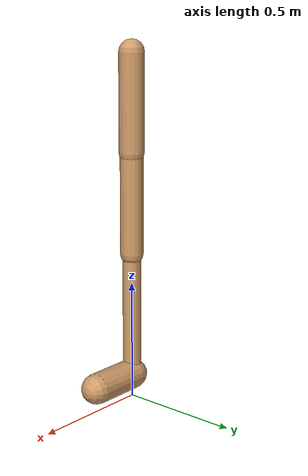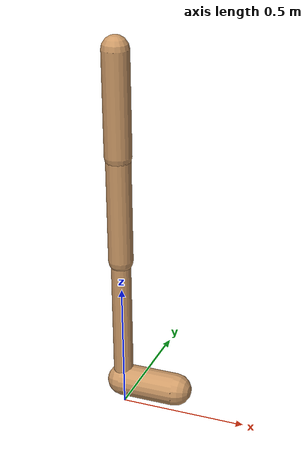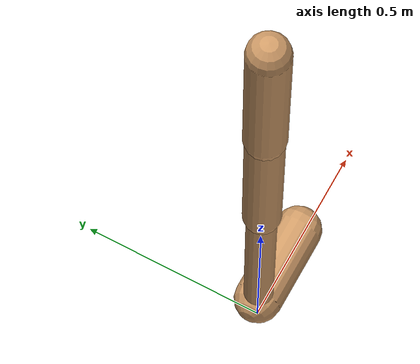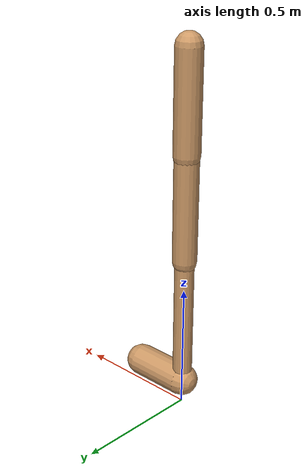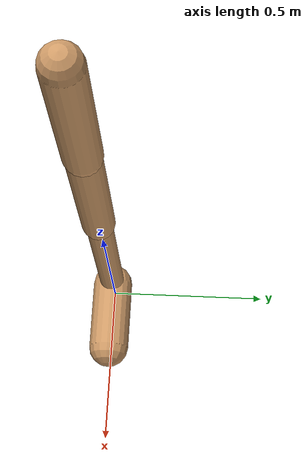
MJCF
<mujoco model="walker2d">
  <compiler angle="degree" coordinate="global" inertiafromgeom="true" />
  <default>
    <joint armature="0.01" damping=".1" limited="true" />
    <geom conaffinity="0" condim="3" contype="1" density="1000" friction="0.8 .1 .1" rgba="0.8 0.6 .4 1" />
  </default>
  <option integrator="RK4" timestep="0.002" />
  <worldbody>

    <body name="torso" pos="0 0 -0.061342814433868506">
      <joint armature="0" axis="1 0 0" damping="0" limited="false" name="ignorex" pos="0 0 0" stiffness="0" type="slide" />
      <joint armature="0" axis="0 0 1" damping="0" limited="false" name="ignorez" pos="0 0 0" ref="1.25" stiffness="0" type="slide" />
      <joint armature="0" axis="0 1 0" damping="0" limited="false" name="ignorey" pos="0 0 0" stiffness="0" type="hinge" />
      <geom fromto="0 0 1.45 0 0 1.05" name="torso_geom" size="0.05201692093045245" type="capsule" />
      <body name="thigh">
        <joint axis="0 -1 0" name="thigh_joint" pos="0 0 1.05" range="-150 0" type="hinge" />
        <geom fromto="0.0 0.0 1.05 0.0 0.0 0.6290571226265693" name="thigh_geom" size="0.048015753163147594" type="capsule" />
        <body name="leg" pos="0.0 0.0 0.029057122626569343">
          <joint axis="0 -1 0" name="leg_joint" pos="0 0 0.6" range="-150 0" type="hinge" />
          <geom fromto="0.0 0.0 0.6 0.0 0.0 0.1322856918072992" name="leg_geom" size="0.03841260253051807" type="capsule" />
          <body name="foot" pos="0.0 0.0 0.032285691807299205">
            <joint axis="0 -1 0" name="foot_joint" pos="0 0 0.1" range="-45 45" type="hinge" />
            <geom fromto="-0.0 0.0 0.1 0.21957309903120034 0.0 0.1" name="foot_geom" size="0.06323571835143389" type="capsule" />
          </body>
        </body>
      </body>

      <body name="thigh_left">
        <joint axis="0 -1 0" name="thigh_left_joint" pos="0 0 1.05" range="-150 0" type="hinge" />
        <geom fromto="0.0 0.0 1.05 0.0 0.0 0.6290571226265693" name="thigh_left_geom" rgba=".7 .3 .6 1" size="0.048015753163147594" type="capsule" />
        <body name="leg_left" pos="0.0 0.0 0.029057122626569343">
          <joint axis="0 -1 0" name="leg_left_joint" pos="0 0 0.6" range="-150 0" type="hinge" />
          <geom fromto="0.0 0.0 0.6 0.0 0.0 0.1322856918072992" name="leg_left_geom" rgba=".7 .3 .6 1" size="0.03841260253051807" type="capsule" />
          <body name="foot_left" pos="0.0 0.0 0.032285691807299205">
            <joint axis="0 -1 0" name="foot_left_joint" pos="0 0 0.1" range="-45 45" type="hinge" />
            <geom fromto="-0.0 0.0 0.1 0.21957309903120034 0.0 0.1" name="foot_left_geom" rgba=".7 .3 .6 1" size="0.06323571835143389" type="capsule" />
          </body>
        </body>
      </body>
    </body>
  </worldbody>
  <actuator>

    <motor ctrllimited="true" ctrlrange="-1.0 1.0" gear="100" joint="thigh_joint" />
    <motor ctrllimited="true" ctrlrange="-1.0 1.0" gear="100" joint="leg_joint" />
    <motor ctrllimited="true" ctrlrange="-1.0 1.0" gear="100" joint="foot_joint" />
    <motor ctrllimited="true" ctrlrange="-1.0 1.0" gear="100" joint="thigh_left_joint" />
    <motor ctrllimited="true" ctrlrange="-1.0 1.0" gear="100" joint="leg_left_joint" />
    <motor ctrllimited="true" ctrlrange="-1.0 1.0" gear="100" joint="foot_left_joint" />

  </actuator>
</mujoco>
